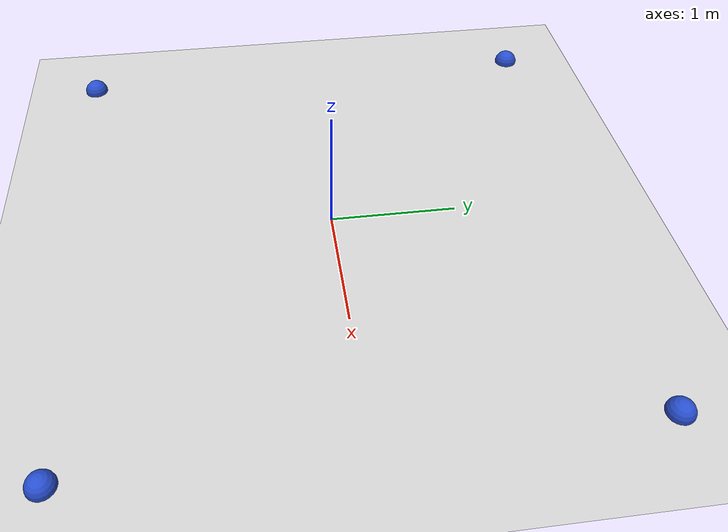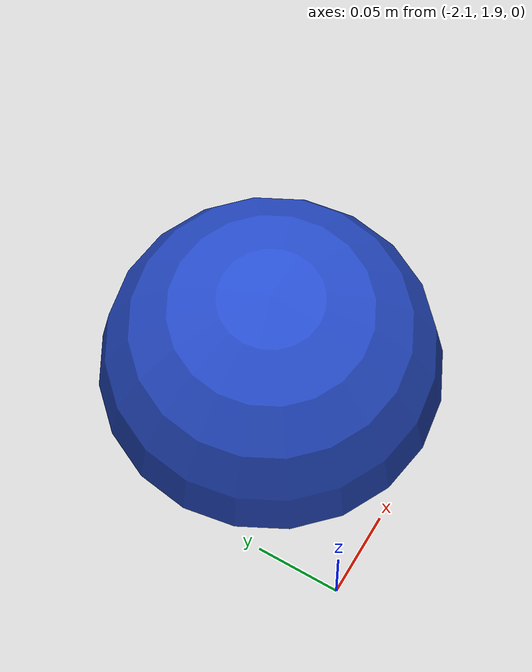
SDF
<sdf version="1.4">
 <world name="default">
  <include><uri>model://sun</uri></include>
  <include><uri>model://ground_plane</uri></include>
  <physics type="ode">
   <real_time_update_rate>1000.0</real_time_update_rate>
   <max_step_size>0.001</max_step_size>
   <real_time_factor>1</real_time_factor>
   <ode>
    <solver>
     <type>quick</type>
     <iters>150</iters>
     <precon_iters>0</precon_iters>
     <sor>1.400000</sor>
     <use_dynamic_moi_rescaling>1</use_dynamic_moi_rescaling>
    </solver>
    <constraints>
     <cfm>0.00001</cfm>
     <erp>0.2</erp>
     <contact_max_correcting_vel>2000.000000</contact_max_correcting_vel>
     <contact_surface_layer>0.01000</contact_surface_layer>
    </constraints>
   </ode>
  </physics>
  <model name="ball_1">
   <pose>2 2 0 0 0 0</pose>
   <link name="link">
    <collision name="collision"><geometry><sphere><radius>0.1</radius></sphere></geometry></collision>
    <visual name="visual">
     <geometry><sphere><radius>0.1</radius></sphere></geometry>
     <material>
      <script><uri>file://media/materials/scripts/gazebo.material</uri><name>Gazebo/Blue</name></script>
     </material>
    </visual>
   </link>
  </model>
  <model name="ball_2">
   <pose>-2 -2 0 0 0 0</pose>
   <link name="link">
    <collision name="collision"><geometry><sphere><radius>0.1</radius></sphere></geometry></collision>
    <visual name="visual">
     <geometry><sphere><radius>0.1</radius></sphere></geometry>
     <material>
      <script><uri>file://media/materials/scripts/gazebo.material</uri><name>Gazebo/Blue</name></script>
     </material>
    </visual>
   </link>
  </model>
  <model name="ball_3">
   <pose>-2 2 0 0 0 0</pose>
   <link name="link">
    <collision name="collision"><geometry><sphere><radius>0.1</radius></sphere></geometry></collision>
    <visual name="visual">
     <geometry><sphere><radius>0.1</radius></sphere></geometry>
     <material>
      <script><uri>file://media/materials/scripts/gazebo.material</uri><name>Gazebo/Blue</name></script>
     </material>
    </visual>
   </link>
  </model>
  <model name="ball_4">
   <pose>2 -2 0 0 0 0</pose>
   <link name="link">
    <collision name="collision"><geometry><sphere><radius>0.1</radius></sphere></geometry></collision>
    <visual name="visual">
     <geometry><sphere><radius>0.1</radius></sphere></geometry>
     <material>
      <script><uri>file://media/materials/scripts/gazebo.material</uri><name>Gazebo/Blue</name></script>
     </material>
    </visual>
   </link>
  </model>
  <light name="ball_1_light" type="spot">
   <pose>2 2 2 0 0 0</pose>
   <diffuse>0.5 0.5 0.5 1</diffuse>
   <specular>0.1 0.1 0.1 1</specular>
   <direction>0 0 -1</direction>
   <attenuation>
    <range>20</range>
    <constant>0.5</constant>
    <linear>0.01</linear>
    <quadratic>0.001</quadratic>
   </attenuation>
   <cast_shadows>0</cast_shadows>
   <spot><inner_angle>0.6</inner_angle><outer_angle>1</outer_angle><falloff>1</falloff></spot>
  </light>
  <light name="ball_2_light" type="spot">
   <pose>-2 -2 2 0 0 0</pose>
   <diffuse>0.7 0.7 0.7 1</diffuse>
   <specular>0.1 0.1 0.1 1</specular>
   <direction>0 0 -1</direction>
   <attenuation>
    <range>20</range>
    <constant>0.5</constant>
    <linear>0.01</linear>
    <quadratic>0.001</quadratic>
   </attenuation>
   <cast_shadows>0</cast_shadows>
   <spot><inner_angle>0.6</inner_angle><outer_angle>1</outer_angle><falloff>1</falloff></spot>
  </light>
  <light name="ball_3_light" type="spot">
   <pose>-0.5 2 1 0 1 0</pose>
   <diffuse>0.5 0.5 0.5 1</diffuse>
   <specular>0.1 0.1 0.1 1</specular>
   <direction>0 0 -1</direction>
   <attenuation>
    <range>20</range>
    <constant>0.5</constant>
    <linear>0.01</linear>
    <quadratic>0.001</quadratic>
   </attenuation>
   <cast_shadows>0</cast_shadows>
   <spot><inner_angle>0.6</inner_angle><outer_angle>1</outer_angle><falloff>1</falloff></spot>
  </light>
  <light name="ball_4_light" type="spot">
   <pose>3 -2 1.5 0 1 0</pose>
   <diffuse>0.5 0.5 0.5 1</diffuse>
   <specular>0.1 0.1 0.1 1</specular>
   <direction>0 0 -1</direction>
   <attenuation>
    <range>20</range>
    <constant>0.5</constant>
    <linear>0.01</linear>
    <quadratic>0.001</quadratic>
   </attenuation>
   <cast_shadows>0</cast_shadows>
   <spot><inner_angle>0.6</inner_angle><outer_angle>1</outer_angle><falloff>1</falloff></spot>
  </light>
  <scene>
   <ambient>0.55 0.55 0.55 1</ambient>
   <background>0.7 0.7 0.7 1</background>
   <shadows>true</shadows>
  </scene>
 </world>
</sdf>
